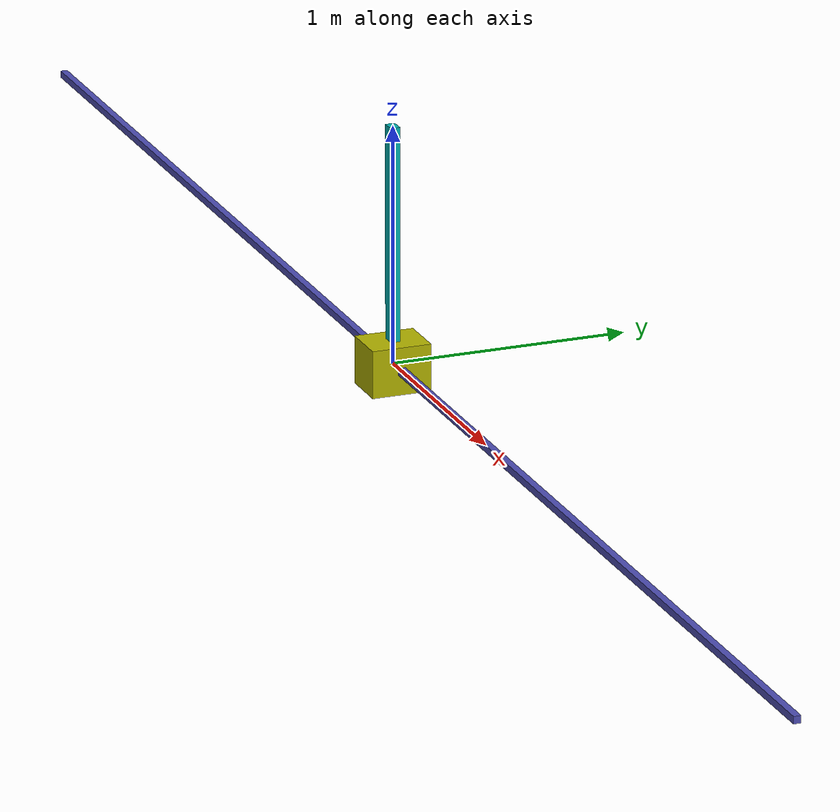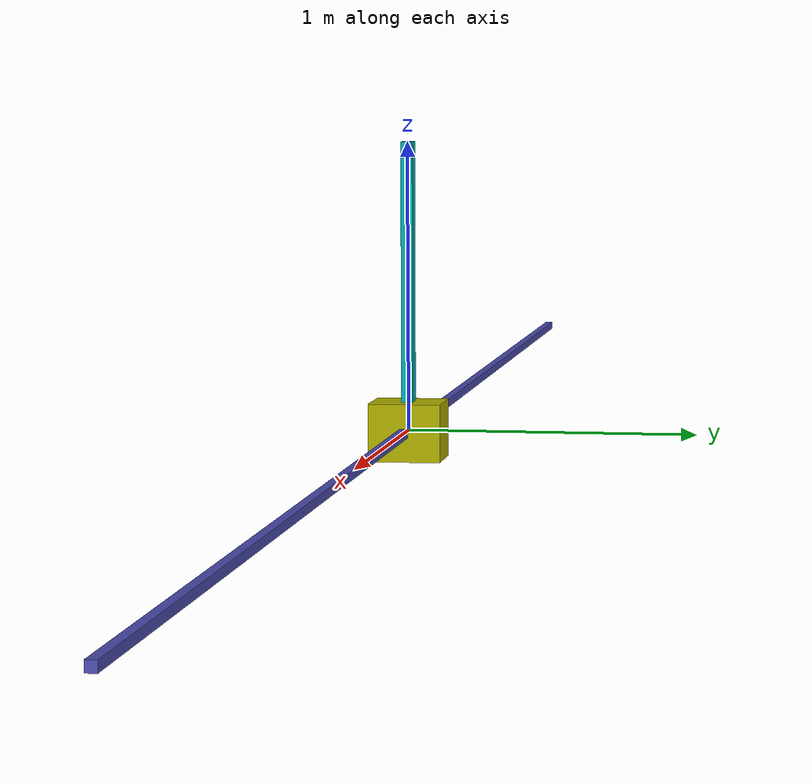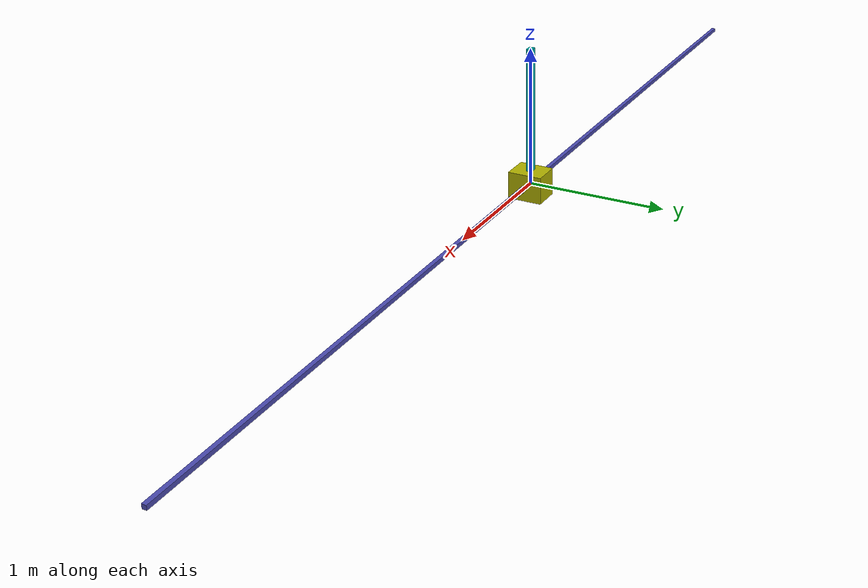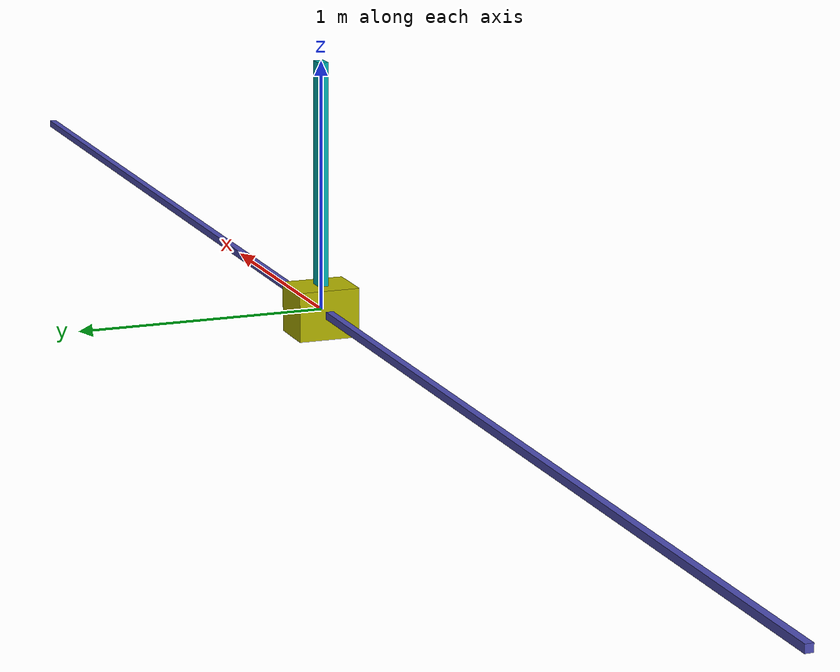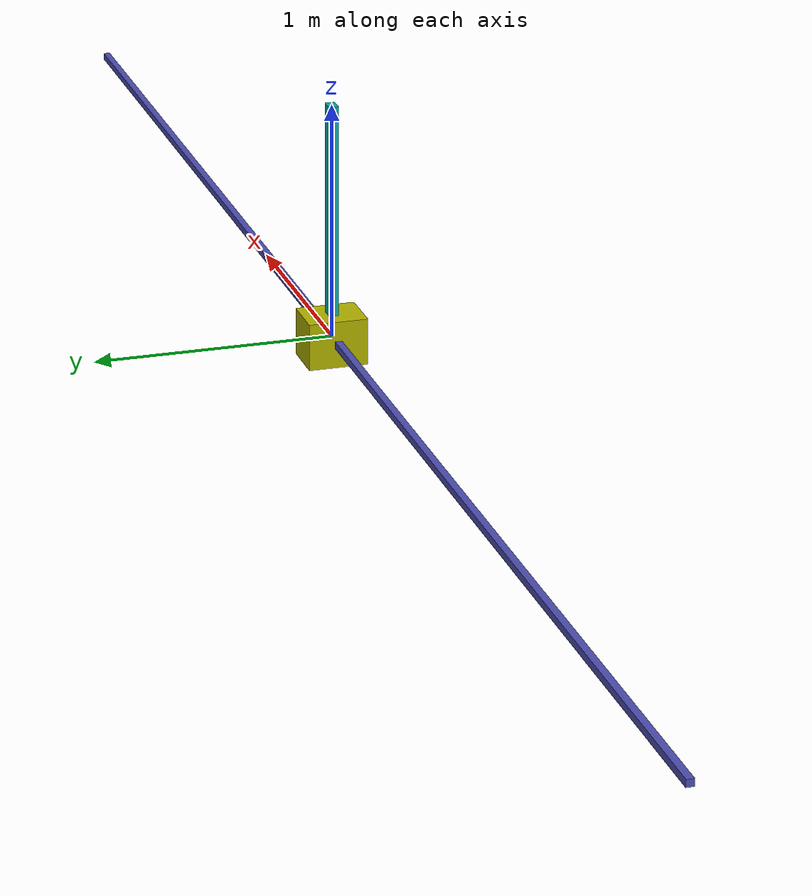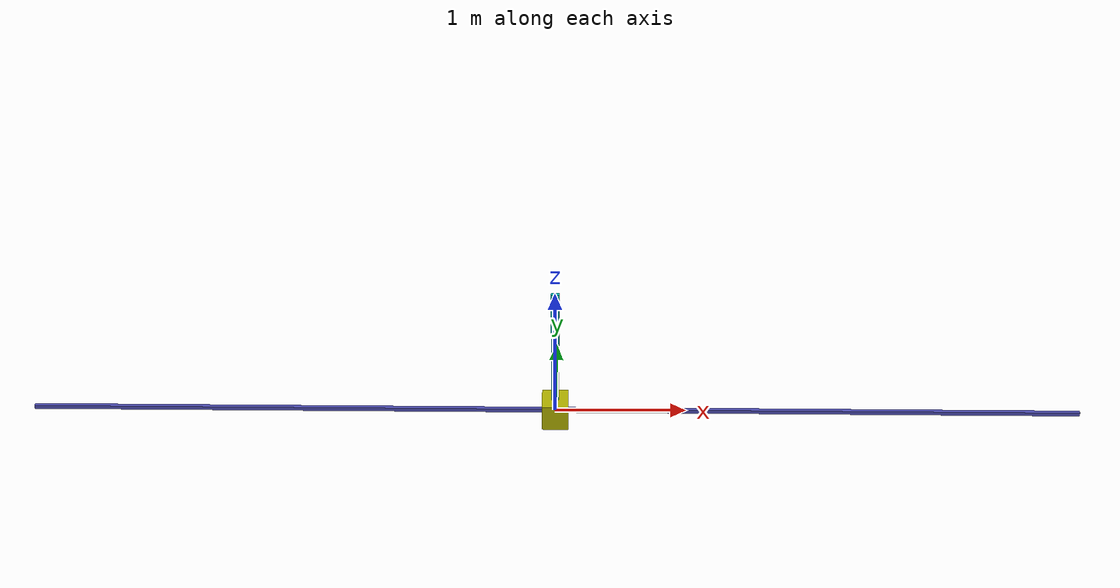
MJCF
<mujoco model="cartpole">
  <compiler angle="radian" coordinate="local" inertiafromgeom="auto" />
	<default>
		<joint armature="0" limited="true"/>
		<geom contype="0" friction="0 0.0 0.0" rgba="0.7 0.7 0 1"/>
	</default>
	<option gravity="0 0 -9.81" integrator="RK4" timestep="0.0166"/>
	<size nstack="3000"/>
	<worldbody>
		<!--geom name="ground" type="plane" pos="0 0 0" /-->
		<body name="rail" pos="0 0 0">
			<geom name="rail" pos="0 0 0" rgba="0.3 0.3 0.7 1" size="4 0.015 0.015" type="box"/>
			<body name="cart" pos="0 0 0">
				<joint axis="1 0 0" limited="true" name="slider" pos="0 0 0" range="-4 4" type="slide"/>
				<geom name="cart" pos="0 0 0" size="0.1 0.125 0.1" type="box"/>
				<inertial pos="0 0 -0.03" mass="1.0" diaginertia="0.00854166667 0.00666667 0.008541666667"/>
				<body name="pole" pos="0 0 0.5">
					<joint axis="0 1 0" name="hinge" pos="0 0 -0.5" range="-2.0 2.0" type="hinge"/>
					<geom name="cpole" rgba="0 0.7 0.7 1" size="0.03 0.02 0.5" type="box"/>
					<inertial pos="0 0 -0.03" mass="1.0" diaginertia="0.0834666667 0.083633333 0.0004333333"/>
				</body>
			</body>
		</body>
	</worldbody>
	<actuator>
		<motor ctrllimited="true" ctrlrange="-1 1" gear="400" joint="slider" name="slide"/>
	</actuator>
</mujoco>
